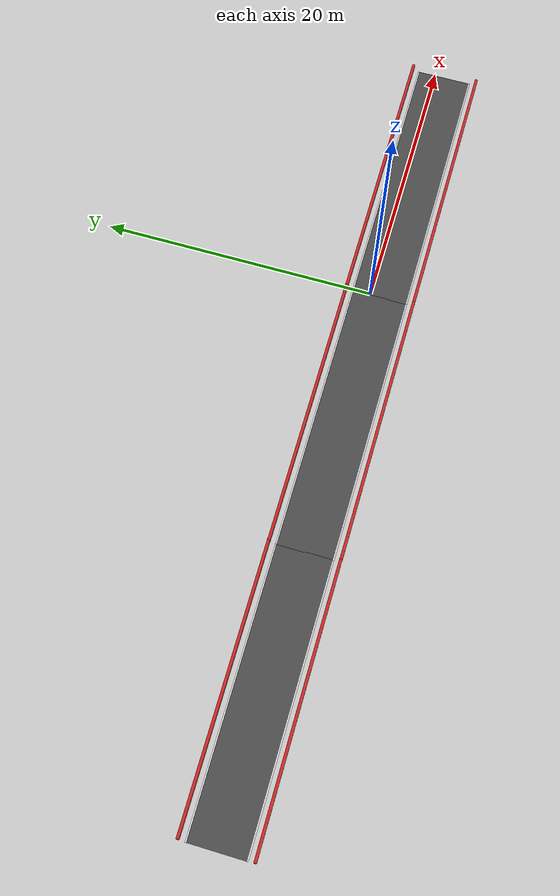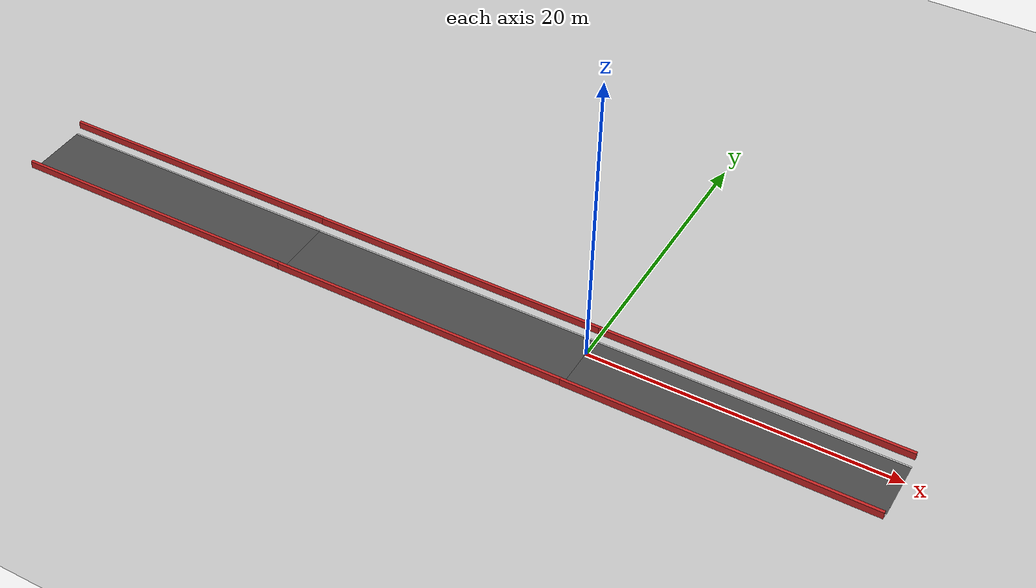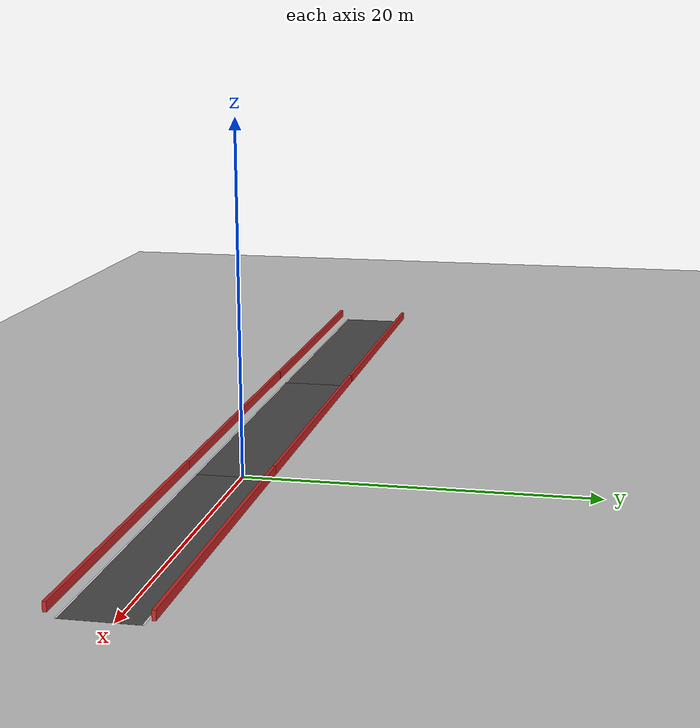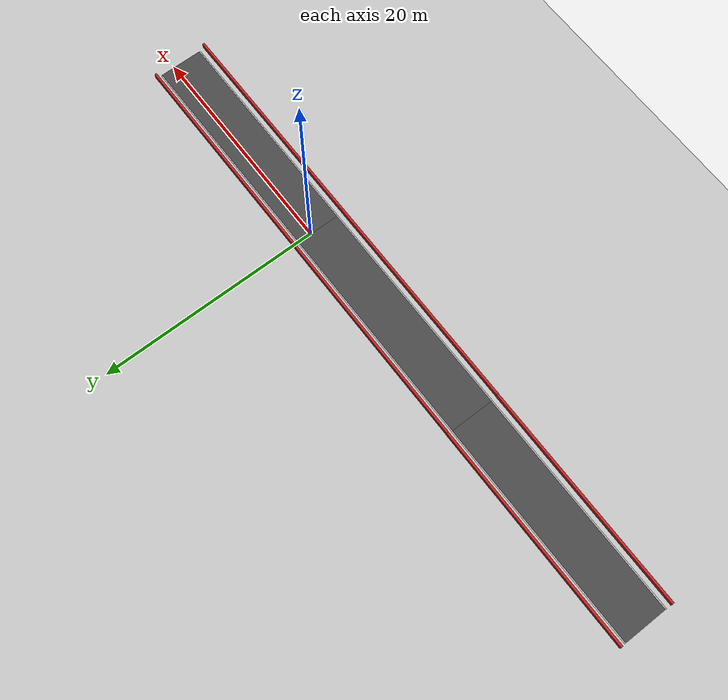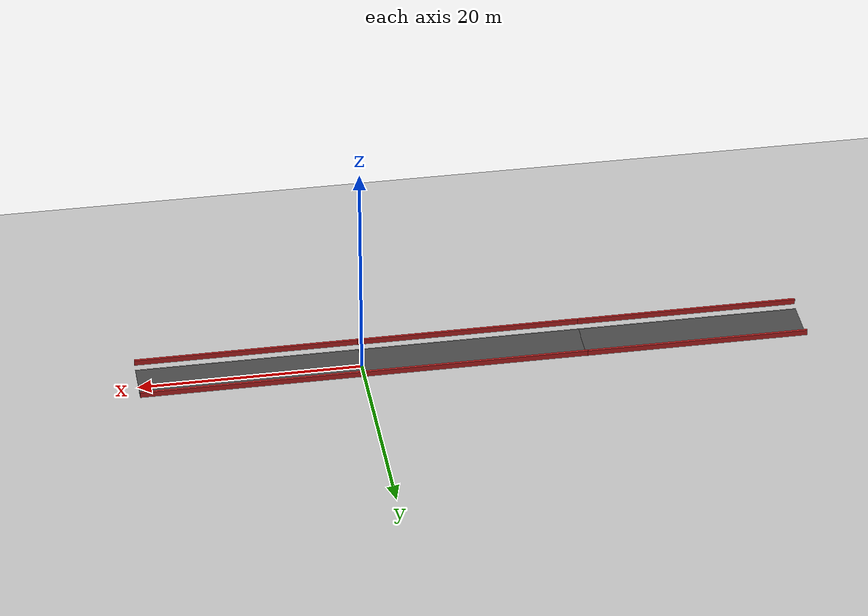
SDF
<sdf version="1.7">
 <world name="default">
  <light name="sun" type="directional">
   <pose>0 0 10 0 -0 0</pose>
   <diffuse>0.8 0.8 0.8 1</diffuse>
   <specular>0.2 0.2 0.2 1</specular>
   <attenuation>
    <range>1000</range>
    <constant>0.9</constant>
    <linear>0.01</linear>
    <quadratic>0.001</quadratic>
   </attenuation>
   <direction>-0.5 0.1 -0.9</direction>
   <spot><inner_angle>0</inner_angle><outer_angle>0</outer_angle><falloff>0</falloff></spot>
  </light>
  <model name="ground_plane">
   <static>1</static>
   <link name="link">
    <collision name="collision">
     <geometry><plane><normal>0 0 1</normal><size>100 100</size></plane></geometry>
     <surface><friction><ode><mu>100</mu><mu2>50</mu2></ode></friction></surface>
    </collision>
    <visual name="visual">
     <cast_shadows>0</cast_shadows>
     <geometry><plane><normal>0 0 1</normal><size>100 100</size></plane></geometry>
     <material>
      <script><uri>file://media/materials/scripts/gazebo.material</uri><name>Gazebo/Grey</name></script>
     </material>
    </visual>
   </link>
  </model>
  <gravity>0 0 -9.8</gravity>
  <magnetic_field>6e-06 2.3e-05 -4.2e-05</magnetic_field>
  <atmosphere type="adiabatic"/>
  <physics type="ode">
   <max_step_size>0.001</max_step_size>
   <real_time_factor>1</real_time_factor>
   <real_time_update_rate>1000</real_time_update_rate>
  </physics>
  <scene><ambient>0.4 0.4 0.4 1</ambient><background>0.7 0.7 0.7 1</background><shadows>1</shadows></scene>
  <audio><device>default</device></audio>
  <spherical_coordinates>
   <surface_model>EARTH_WGS84</surface_model>
   <latitude_deg>0</latitude_deg>
   <longitude_deg>0</longitude_deg>
   <elevation>0</elevation>
   <heading_deg>0</heading_deg>
  </spherical_coordinates>
  <model name="custom_track_section">
   <static>1</static>
   <link name="track_link">
    <visual name="road_visual">
     <geometry><plane><normal>0 0 1</normal><size>20 4</size></plane></geometry>
     <material>
      <script><uri>file://media/materials/scripts/gazebo.material</uri><name>Gazebo/DarkAsphalt</name></script>
     </material>
    </visual>
    <visual name="left_line_visual">
     <pose>0 2.01 0.01 0 -0 0</pose>
     <geometry><plane><normal>0 0 1</normal><size>20 0.1</size></plane></geometry>
     <material>
      <script><uri>file://media/materials/scripts/gazebo.material</uri><name>Gazebo/White</name></script>
     </material>
    </visual>
    <visual name="right_line_visual">
     <pose>0 -2.01 0.01 0 -0 0</pose>
     <geometry><plane><normal>0 0 1</normal><size>20 0.1</size></plane></geometry>
     <material>
      <script><uri>file://media/materials/scripts/gazebo.material</uri><name>Gazebo/White</name></script>
     </material>
    </visual>
    <visual name="left_barrier">
     <pose>0 2.5 0.5 0 -0 0</pose>
     <geometry><box><size>20 0.2 0.5</size></box></geometry>
     <material>
      <script><uri>file://media/materials/scripts/gazebo.material</uri><name>Gazebo/Red</name></script>
     </material>
    </visual>
    <visual name="right_barrier">
     <pose>0 -2.5 0.5 0 -0 0</pose>
     <geometry><box><size>20 0.2 0.5</size></box></geometry>
     <material>
      <script><uri>file://media/materials/scripts/gazebo.material</uri><name>Gazebo/Red</name></script>
     </material>
    </visual>
   </link>
   <pose>-10.0439 -0.70422 0 0 -0 0</pose>
  </model>
  <model name="custom_track_section_0">
   <static>1</static>
   <link name="track_link">
    <visual name="road_visual">
     <geometry><plane><normal>0 0 1</normal><size>20 4</size></plane></geometry>
     <material>
      <script><uri>file://media/materials/scripts/gazebo.material</uri><name>Gazebo/DarkAsphalt</name></script>
     </material>
    </visual>
    <visual name="left_line_visual">
     <pose>0 2.01 0.01 0 -0 0</pose>
     <geometry><plane><normal>0 0 1</normal><size>20 0.1</size></plane></geometry>
     <material>
      <script><uri>file://media/materials/scripts/gazebo.material</uri><name>Gazebo/White</name></script>
     </material>
    </visual>
    <visual name="right_line_visual">
     <pose>0 -2.01 0.01 0 -0 0</pose>
     <geometry><plane><normal>0 0 1</normal><size>20 0.1</size></plane></geometry>
     <material>
      <script><uri>file://media/materials/scripts/gazebo.material</uri><name>Gazebo/White</name></script>
     </material>
    </visual>
    <visual name="left_barrier">
     <pose>0 2.5 0.5 0 -0 0</pose>
     <geometry><box><size>20 0.2 0.5</size></box></geometry>
     <material>
      <script><uri>file://media/materials/scripts/gazebo.material</uri><name>Gazebo/Red</name></script>
     </material>
    </visual>
    <visual name="right_barrier">
     <pose>0 -2.5 0.5 0 -0 0</pose>
     <geometry><box><size>20 0.2 0.5</size></box></geometry>
     <material>
      <script><uri>file://media/materials/scripts/gazebo.material</uri><name>Gazebo/Red</name></script>
     </material>
    </visual>
   </link>
   <pose>-29.9912 -0.689429 0 0 -0 0</pose>
  </model>
  <model name="custom_track_section_1">
   <static>1</static>
   <link name="track_link">
    <visual name="road_visual">
     <geometry><plane><normal>0 0 1</normal><size>20 4</size></plane></geometry>
     <material>
      <script><uri>file://media/materials/scripts/gazebo.material</uri><name>Gazebo/DarkAsphalt</name></script>
     </material>
    </visual>
    <visual name="left_line_visual">
     <pose>0 2.01 0.01 0 -0 0</pose>
     <geometry><plane><normal>0 0 1</normal><size>20 0.1</size></plane></geometry>
     <material>
      <script><uri>file://media/materials/scripts/gazebo.material</uri><name>Gazebo/White</name></script>
     </material>
    </visual>
    <visual name="right_line_visual">
     <pose>0 -2.01 0.01 0 -0 0</pose>
     <geometry><plane><normal>0 0 1</normal><size>20 0.1</size></plane></geometry>
     <material>
      <script><uri>file://media/materials/scripts/gazebo.material</uri><name>Gazebo/White</name></script>
     </material>
    </visual>
    <visual name="left_barrier">
     <pose>0 2.5 0.5 0 -0 0</pose>
     <geometry><box><size>20 0.2 0.5</size></box></geometry>
     <material>
      <script><uri>file://media/materials/scripts/gazebo.material</uri><name>Gazebo/Red</name></script>
     </material>
    </visual>
    <visual name="right_barrier">
     <pose>0 -2.5 0.5 0 -0 0</pose>
     <geometry><box><size>20 0.2 0.5</size></box></geometry>
     <material>
      <script><uri>file://media/materials/scripts/gazebo.material</uri><name>Gazebo/Red</name></script>
     </material>
    </visual>
   </link>
   <pose>9.91964 -0.710669 0 0 -0 0</pose>
  </model>
 </world>
</sdf>
